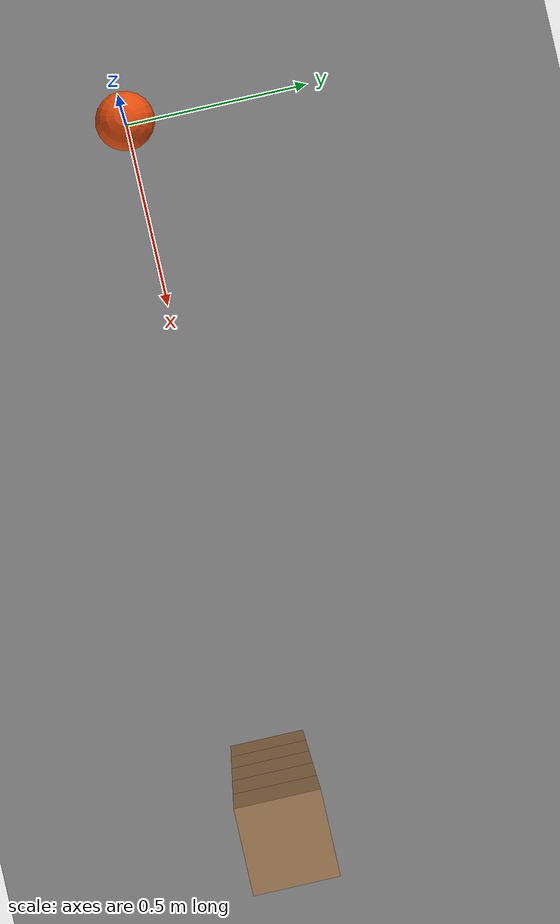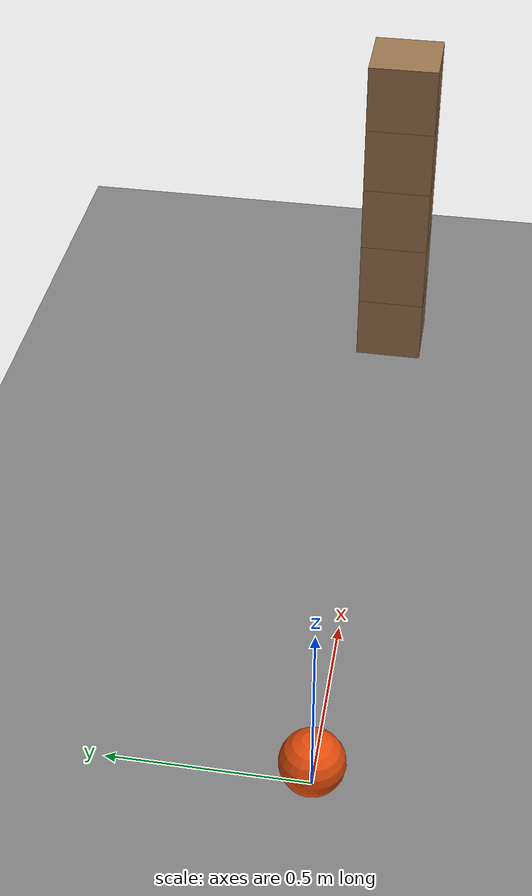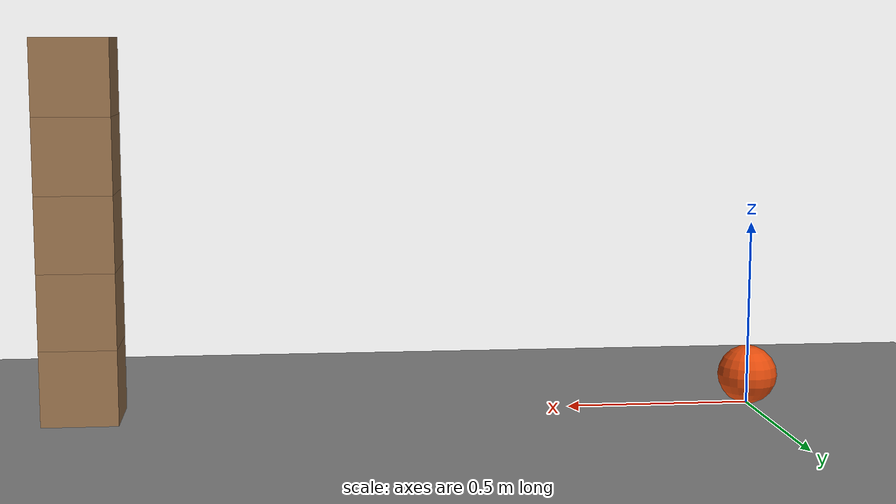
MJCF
<mujoco model="five_blocks_toppled_by_a_rolling_pusher">
  <compiler angle="radian"/>
  <option timestep="0.002"/>
  <worldbody>
    <geom name="floor" type="plane" size="12 12 0.1" friction="0.45 0.005 0.001"/>
    <body name="block1" pos="1.8 0 0.1">
      <freejoint/>
      <geom name="block1" type="box" pos="0 0 0" size="0.1 0.1 0.1" mass="0.5" friction="0.45 0.005 0.001" solref="0.01 1" rgba="0.6 0.45 0.3 1"/>
    </body>
    <body name="block2" pos="1.8 0 0.3">
      <freejoint/>
      <geom name="block2" type="box" pos="0 0 0" size="0.1 0.1 0.1" mass="0.5" friction="0.45 0.005 0.001" solref="0.01 1" rgba="0.6 0.45 0.3 1"/>
    </body>
    <body name="block3" pos="1.8 0 0.5">
      <freejoint/>
      <geom name="block3" type="box" pos="0 0 0" size="0.1 0.1 0.1" mass="0.5" friction="0.45 0.005 0.001" solref="0.01 1" rgba="0.6 0.45 0.3 1"/>
    </body>
    <body name="block4" pos="1.8 0 0.7">
      <freejoint/>
      <geom name="block4" type="box" pos="0 0 0" size="0.1 0.1 0.1" mass="0.5" friction="0.45 0.005 0.001" solref="0.01 1" rgba="0.6 0.45 0.3 1"/>
    </body>
    <body name="block5" pos="1.8 0 0.9">
      <freejoint/>
      <geom name="block5" type="box" pos="0 0 0" size="0.1 0.1 0.1" mass="0.5" friction="0.45 0.005 0.001" solref="0.01 1" rgba="0.6 0.45 0.3 1"/>
    </body>
    <body name="pusher" pos="0 0 0.08">
      <freejoint/>
      <geom name="pusher" type="sphere" pos="0 0 0" size="0.08" mass="10" condim="6" friction="0.45 0.005 0.001" solref="0.01 1" rgba="0.9 0.3 0.05 1"/>
    </body>
  </worldbody>
  <keyframe>
    <key name="start" qpos="1.8 0 0.1 1 0 0 0 1.8 0 0.3 1 0 0 0 1.8 0 0.5 1 0 0 0 1.8 0 0.7 1 0 0 0 1.8 0 0.9 1 0 0 0 0 0 0.08 1 0 0 0" qvel="0 0 0 0 0 0 0 0 0 0 0 0 0 0 0 0 0 0 0 0 0 0 0 0 0 0 0 0 0 0 3 0 0 0 37.5 0"/>
  </keyframe>
</mujoco>
